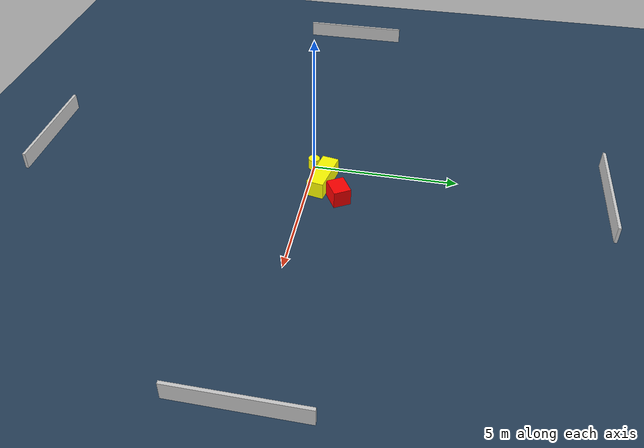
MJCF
<?xml version="1.0" ?>
<mujoco model="generated_environment">
  <option timestep="0.01" integrator="RK4" cone="elliptic"/>
  <default>
    <geom density="1"/>
  </default>
  <asset>
    <texture builtin="gradient" height="3072" name="skybox" rgb1="0.3 0.5 0.7" rgb2="0 0 0" type="skybox" width="512"/>
    <texture builtin="checker" height="300" name="groundplane" rgb1="0.2 0.3 0.4" rgb2="0.1 0.2 0.3" type="2d" width="300"/>
    <material name="groundplane" reflectance="0.2" texrepeat="5 5" texture="groundplane"/>
  </asset>
  <worldbody>
    <light dir="0 0 -1" directional="true" pos="0 0 1.5"/>
    <geom condim="3" friction="0.5 0.005 0.001" material="groundplane" name="floor" pos="0 0 0" size="0 0 0.05" type="plane"/>
    <body name="walls">
      <geom name="wall_1" condim="4" pos="-10.0 0.0 0.3" rgba="0.800000011920929 0.800000011920929 0.800000011920929 1.0" size="0.05 2.0 0.3" type="box"/>
      <geom name="wall_2" condim="4" pos="10.0 0.0 0.3" rgba="0.800000011920929 0.800000011920929 0.800000011920929 1.0" size="0.05 2.0 0.3" type="box"/>
      <geom name="wall_3" condim="4" pos="0.0 -10.0 0.3" rgba="0.800000011920929 0.800000011920929 0.800000011920929 1.0" size="2.0 0.05 0.3" type="box"/>
      <geom name="wall_4" condim="4" pos="0.0 10.0 0.3" rgba="0.800000011920929 0.800000011920929 0.800000011920929 1.0" size="2.0 0.05 0.3" type="box"/>
    </body>
    <body name="robot">
      <joint name="joint_x" type="slide" pos="0 0 0" axis="1 0 0"/>
      <joint name="joint_y" type="slide" pos="0 0 0" axis="0 1 0"/>
      <geom name="robot" type="cylinder" pos="0.0 0.0 0.2" size="0.2 0.2 0.0" mass="5.0" friction="1.0 0.005 0.0001" condim="4" rgba="1.0 1.0 0.0 1.0"/>
    </body>
    <body name="obstacle_1_movable">
      <geom name="obstacle_1_movable" condim="4" pos="0.8658727209340924 0.47010341580930287 0.3" euler="0 0 79.11067729160696" friction="0.0 0.005 0.001" rgba="1.0 1.0 0.0 1.0" size="0.28730770955666446 0.7612366591462036 0.3" type="box" mass="0.1"/>
      <joint type="free"/>
    </body>
    <body name="obstacle_2_static">
      <geom name="obstacle_2_static" condim="4" pos="1.5812848143033924 1.1342806376629744 0.3" euler="0 0 300.4555534095574" friction="0.0 0.005 0.001" rgba="1.0 0.0 0.0 1.0" size="0.30078911298044164 0.36193589145169547 0.3" type="box"/>
    </body>
  </worldbody>
  <actuator>
    <motor name="actuator_x" joint="joint_x" gear="1" ctrlrange="-1 1"/>
    <motor name="actuator_y" joint="joint_y" gear="1" ctrlrange="-1 1"/>
  </actuator>
</mujoco>
